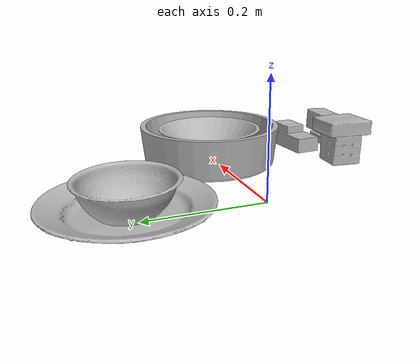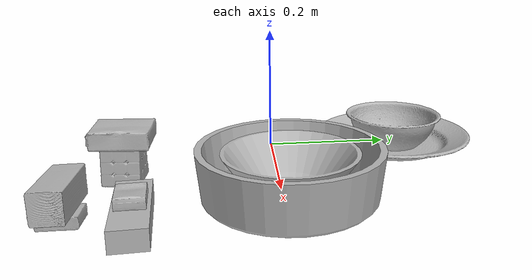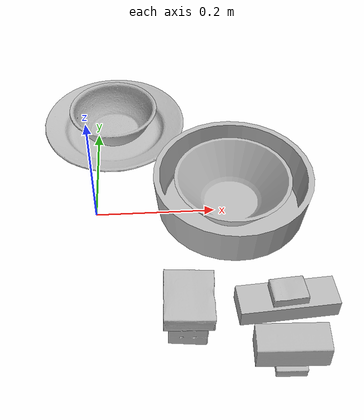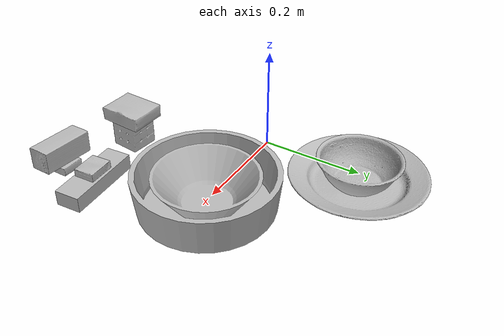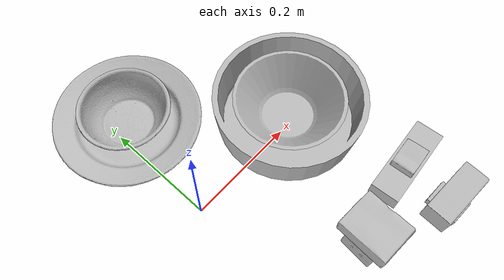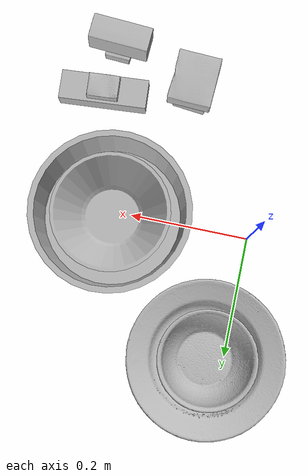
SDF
<?xml version="1.0" ?>
<sdf version="1.4">
  <world name="default">
    <light name="light1" type="point">
      <pose>0 0 1 0 0 0</pose>
      <diffuse>3 3 3 1</diffuse>
      <specular>3 3 3 1</specular>
    </light>
    <light name="light2" type="point">
      <pose>0 0.5 2 0 0 0</pose>
      <diffuse>1 1 1 1</diffuse>
      <specular>1 1 1 1</specular>
    </light>
    <light name="light3" type="point">
      <pose>0 0.5 2 0 0 0</pose>
      <diffuse>3 3 3 1</diffuse>
      <specular>3 3 3 1</specular>
    </light>
    <scene>
      <ambient>0.7 0.7 0.7</ambient>
    </scene>
    <model name="box1">
      <link name="link_box1">
        <collision name="default">
          <geometry>
            <mesh>
              <uri>model://pudding_box/collision_meshes/collision.obj</uri>
              <scale>0.5 0.5 0.5</scale>
            </mesh>
          </geometry>
          <surface>
            <friction>
              <ode>
                <mu>0.5</mu>
                <mu2>0.5</mu2>
              </ode>
            </friction>
          </surface>
        </collision>
        <visual name="default">
          <geometry>
            <mesh>
              <uri>model://pudding_box/visual_meshes/visual.dae</uri>
              <scale>0.5 0.5 0.5</scale>
            </mesh>
          </geometry>
        </visual>
        <inertial>
          <mass>0.06043573096394539</mass>
          <pose>0.0002447410661261529 0.00040339428232982755 -0.0002594413817860186 0.005213102238104987 -0.006603800125102895 0.020079827017580043</pose>
          <inertia>
            <ixx>1.707987e-05</ixx>
            <iyy>1.1491458e-05</iyy>
            <izz>2.522289e-05</izz>
            <ixy>0</ixy>
            <ixz>0</ixz>
            <iyz>0</iyz>
          </inertia>
        </inertial>
      </link>
      <pose>0.279731422662735 -0.29024362564086914 0.009862624108791351 0.0225479235953855 -0.011343043588692186 -0.046633654853003026</pose>
    </model>
    <model name="box11">
      <link name="link_box11">
        <collision name="default">
          <geometry>
            <mesh>
              <uri>model://wood_block/collision_meshes/collision.obj</uri>
              <scale>0.5 0.5 0.5</scale>
            </mesh>
          </geometry>
          <surface>
            <friction>
              <ode>
                <mu>0.5</mu>
                <mu2>0.5</mu2>
              </ode>
            </friction>
          </surface>
        </collision>
        <visual name="default">
          <geometry>
            <mesh>
              <uri>model://wood_block/visual_meshes/visual.dae</uri>
              <scale>0.5 0.5 0.5</scale>
            </mesh>
          </geometry>
        </visual>
        <inertial>
          <mass>0.22556793689727783</mass>
          <pose>-2.9066577553749084e-06 -0.000285404734313488 0.00013204290007706732 -0.05220975528916272 -0.005192696013017626 -0.0068613779154948285</pose>
          <inertia>
            <ixx>7.5461e-05</ixx>
            <iyy>0.00023838133</iyy>
            <izz>0.00023748967</izz>
            <ixy>0</ixy>
            <ixz>0</ixz>
            <iyz>0</iyz>
          </inertia>
        </inertial>
      </link>
      <pose>0.2790725529193878 -0.2903449833393097 0.041747160255908966 0.022505758462586435 -0.030665382597049484 -0.04774109599094531</pose>
    </model>
    <model name="box2">
      <link name="link_box2">
        <collision name="default">
          <geometry>
            <mesh>
              <uri>model://jenga/collision_meshes/collision.obj</uri>
              <scale>1.0 1.0 1.0</scale>
            </mesh>
          </geometry>
          <surface>
            <friction>
              <ode>
                <mu>0.5</mu>
                <mu2>0.5</mu2>
              </ode>
            </friction>
          </surface>
        </collision>
        <visual name="default">
          <geometry>
            <mesh>
              <uri>model://jenga/visual_meshes/visual.dae</uri>
              <scale>1.0 1.0 1.0</scale>
            </mesh>
          </geometry>
        </visual>
        <inertial>
          <mass>0.2534179985523224</mass>
          <pose>-2.502856091268768e-07 -0.00010250010382151231 -4.0923401684267446e-05 0.0 -7.342154049184251e-07 0.0</pose>
          <inertia>
            <ixx>7.012692e-05</ixx>
            <iyy>0.00047517804</iyy>
            <izz>0.000507293</izz>
            <ixy>0</ixy>
            <ixz>0</ixz>
            <iyz>0</iyz>
          </inertia>
        </inertial>
      </link>
      <pose>0.289993017911911 -0.19989775121212006 0.014999995939433575 2.261367668232353e-07 5.551480311017696e-08 0.07287524977600647</pose>
    </model>
    <model name="box21">
      <link name="link_box21">
        <collision name="default">
          <geometry>
            <mesh>
              <uri>model://cracker_box/collision_meshes/collision.obj</uri>
              <scale>0.25 0.25 0.25</scale>
            </mesh>
          </geometry>
          <surface>
            <friction>
              <ode>
                <mu>0.5</mu>
                <mu2>0.5</mu2>
              </ode>
            </friction>
          </surface>
        </collision>
        <visual name="default">
          <geometry>
            <mesh>
              <uri>model://cracker_box/visual_meshes/visual.dae</uri>
              <scale>0.25 0.25 0.25</scale>
            </mesh>
          </geometry>
        </visual>
        <inertial>
          <mass>0.04045860841870308</mass>
          <pose>0.0002366030093980953 6.358561950037256e-05 -0.0004257383698131889 -0.0003162076898946344 -0.011106488668808423 0.0025467959335197018</pose>
          <inertia>
            <ixx>6.4317906e-06</ixx>
            <iyy>1.062015e-05</iyy>
            <izz>1.5155927e-05</izz>
            <ixy>0</ixy>
            <ixz>0</ixz>
            <iyz>0</iyz>
          </inertia>
        </inertial>
      </link>
      <pose>0.2899226248264313 -0.1998552531003952 0.03912043571472168 -0.011786100666520496 -0.007366351990583876 0.07300191976332097</pose>
    </model>
    <model name="box3">
      <link name="link_box3">
        <collision name="default">
          <geometry>
            <mesh>
              <uri>model://rubiks_cube/collision_meshes/collision.obj</uri>
              <scale>1.0 1.0 1.0</scale>
            </mesh>
          </geometry>
          <surface>
            <friction>
              <ode>
                <mu>0.5</mu>
                <mu2>0.5</mu2>
              </ode>
            </friction>
          </surface>
        </collision>
        <visual name="default">
          <geometry>
            <mesh>
              <uri>model://rubiks_cube/visual_meshes/visual.dae</uri>
              <scale>1.0 1.0 1.0</scale>
            </mesh>
          </geometry>
        </visual>
        <inertial>
          <mass>0.12779320776462555</mass>
          <pose>2.6721041649580002e-05 5.2569666877388954e-05 -7.264316082000732e-06 -0.054672129212199855 -0.09814057073985563 -0.03445704008669109</pose>
          <inertia>
            <ixx>7.061434e-05</ixx>
            <iyy>7.0285016e-05</iyy>
            <izz>7.119949e-05</izz>
            <ixy>0</ixy>
            <ixz>0</ixz>
            <iyz>0</iyz>
          </inertia>
        </inertial>
      </link>
      <pose>0.1399179995059967 -0.2302224040031433 0.028678981587290764 -2.6676483589796867e-06 3.73893967537269e-06 -0.06080761356301662</pose>
    </model>
    <model name="box31">
      <link name="link_box31">
        <collision name="default">
          <geometry>
            <mesh>
              <uri>model://gelatin_box/collision_meshes/collision.obj</uri>
              <scale>1.0 1.0 1.0</scale>
            </mesh>
          </geometry>
          <surface>
            <friction>
              <ode>
                <mu>0.5</mu>
                <mu2>0.5</mu2>
              </ode>
            </friction>
          </surface>
        </collision>
        <visual name="default">
          <geometry>
            <mesh>
              <uri>model://gelatin_box/visual_meshes/visual.dae</uri>
              <scale>1.0 1.0 1.0</scale>
            </mesh>
          </geometry>
        </visual>
        <inertial>
          <mass>0.20050984621047974</mass>
          <pose>0.0004319618456065655 0.00011156872642459348 -0.00036403213744051754 -0.0010503720853528096 -0.004755817758068365 0.016440559471334753</pose>
          <inertia>
            <ixx>0.00014154361</ixx>
            <iyy>0.00010110386</iyy>
            <izz>0.0002154609</izz>
            <ixy>0</ixy>
            <ixz>0</ixz>
            <iyz>0</iyz>
          </inertia>
        </inertial>
      </link>
      <pose>0.14003777503967285 -0.2299564927816391 0.07283157855272293 -0.0005606576394931249 0.006956605943400112 -0.06081473631435817</pose>
    </model>
    <model name="plate1">
      <link name="link_plate1">
        <collision name="default">
          <geometry>
            <mesh>
              <uri>model://pan_tefal/collision_meshes/collision.obj</uri>
              <scale>1.0 1.0 1.0</scale>
            </mesh>
          </geometry>
          <surface>
            <friction>
              <ode>
                <mu>0.5</mu>
                <mu2>0.5</mu2>
              </ode>
            </friction>
          </surface>
        </collision>
        <visual name="default">
          <geometry>
            <mesh>
              <uri>model://pan_tefal/visual_meshes/visual.dae</uri>
              <scale>1.0 1.0 1.0</scale>
            </mesh>
          </geometry>
        </visual>
        <inertial>
          <mass>0.9166961908340454</mass>
          <pose>-0.00018002631259150803 3.279098018538207e-05 -0.00851493515074253 0.0008190256602529888 -0.0003301357182707761 -0.33185348708971</pose>
          <inertia>
            <ixx>0.006327908</ixx>
            <iyy>0.006368705</iyy>
            <izz>0.01164846</izz>
            <ixy>0</ixy>
            <ixz>0</ixz>
            <iyz>0</iyz>
          </inertia>
        </inertial>
      </link>
      <pose>0.22999998927116394 0.010000018402934074 0.03804999589920044 8.201264599599497e-08 -1.5184256072724017e-08 0.06315391422477452</pose>
    </model>
    <model name="bowl1">
      <link name="link_bowl1">
        <collision name="default">
          <geometry>
            <mesh>
              <uri>model://bowl_a/collision_meshes/collision.obj</uri>
              <scale>1.0 1.0 1.0</scale>
            </mesh>
          </geometry>
          <surface>
            <friction>
              <ode>
                <mu>0.5</mu>
                <mu2>0.5</mu2>
              </ode>
            </friction>
          </surface>
        </collision>
        <visual name="default">
          <geometry>
            <mesh>
              <uri>model://bowl_a/visual_meshes/visual.dae</uri>
              <scale>1.0 1.0 1.0</scale>
            </mesh>
          </geometry>
        </visual>
        <inertial>
          <mass>0.44606471061706543</mass>
          <pose>0.0002786746481433511 4.7312179958680645e-05 -0.0013765294570475817 -0.0009805488171165768 -0.0010938123304380014 -0.19122487556540352</pose>
          <inertia>
            <ixx>0.0012699668</ixx>
            <iyy>0.001277764</iyy>
            <izz>0.0022586845</izz>
            <ixy>0</ixy>
            <ixz>0</ixz>
            <iyz>0</iyz>
          </inertia>
        </inertial>
      </link>
      <pose>0.22995537519454956 0.010076968930661678 0.03817623853683472 -0.0027404627723544572 -0.0010543888380438104 0.15876924551999252</pose>
    </model>
    <model name="plate2">
      <link name="link_plate2">
        <collision name="default">
          <geometry>
            <mesh>
              <uri>model://plate/collision_meshes/collision.obj</uri>
              <scale>1.0 1.0 1.0</scale>
            </mesh>
          </geometry>
          <surface>
            <friction>
              <ode>
                <mu>0.5</mu>
                <mu2>0.5</mu2>
              </ode>
            </friction>
          </surface>
        </collision>
        <visual name="default">
          <geometry>
            <mesh>
              <uri>model://plate/visual_meshes/visual.dae</uri>
              <scale>1.0 1.0 1.0</scale>
            </mesh>
          </geometry>
        </visual>
        <inertial>
          <mass>0.10088177025318146</mass>
          <pose>-0.0006044645560905337 0.0002782582596410066 -0.0010561994276940823 0.002218810424575964 -0.003225458488037908 0.4526011088858205</pose>
          <inertia>
            <ixx>0.00047192685</ixx>
            <iyy>0.00046741302</iyy>
            <izz>0.00092301855</izz>
            <ixy>0</ixy>
            <ixz>0</ixz>
            <iyz>0</iyz>
          </inertia>
        </inertial>
      </link>
      <pose>0.029999999329447746 0.2099999636411667 0.013732993975281715 1.2423810471071241e-09 -1.2950182650002397e-08 -0.05695860469153493</pose>
    </model>
    <model name="bowl2">
      <link name="link_bowl2">
        <collision name="default">
          <geometry>
            <mesh>
              <uri>model://bowl/collision_meshes/collision.obj</uri>
              <scale>1.0 1.0 1.0</scale>
            </mesh>
          </geometry>
          <surface>
            <friction>
              <ode>
                <mu>0.5</mu>
                <mu2>0.5</mu2>
              </ode>
            </friction>
          </surface>
        </collision>
        <visual name="default">
          <geometry>
            <mesh>
              <uri>model://bowl/visual_meshes/visual.dae</uri>
              <scale>1.0 1.0 1.0</scale>
            </mesh>
          </geometry>
        </visual>
        <inertial>
          <mass>0.10570208728313446</mass>
          <pose>0.00020445376867428422 -0.00103021040558815 -0.000804263399913907 -0.015764090239829616 0.014546785988443214 0.7140402180265782</pose>
          <inertia>
            <ixx>0.00024280604</ixx>
            <iyy>0.0002373808</iyy>
            <izz>0.0004084832</izz>
            <ixy>0</ixy>
            <ixz>0</ixz>
            <iyz>0</iyz>
          </inertia>
        </inertial>
      </link>
      <pose>0.02972593903541565 0.20998002588748932 0.03185780718922615 0.002224589944645781 -0.010252890911635589 -0.12354323212014089</pose>
    </model>
  </world>
</sdf>
